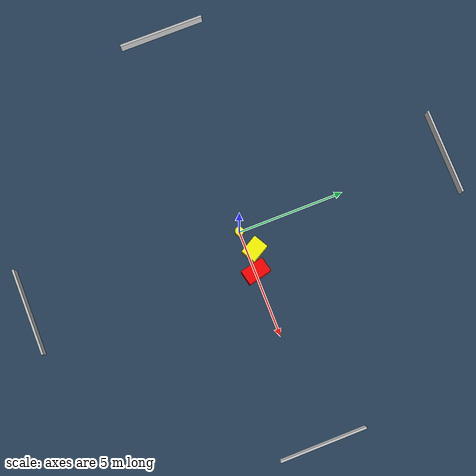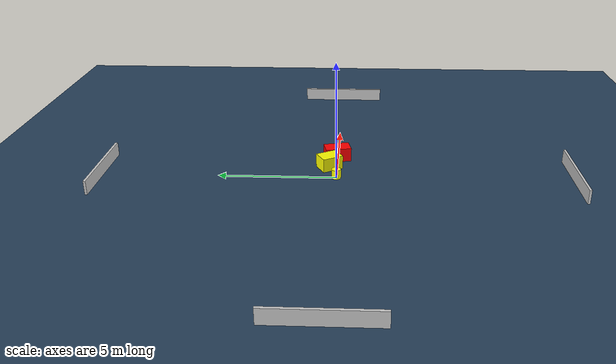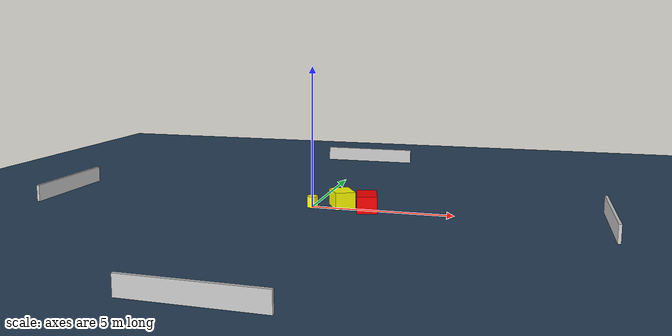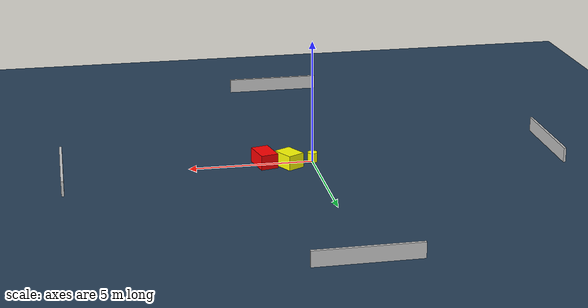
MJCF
<?xml version="1.0" ?>
<mujoco model="generated_environment">
  <option timestep="0.01" integrator="RK4" cone="elliptic"/>
  <default>
    <geom density="1"/>
  </default>
  <asset>
    <texture builtin="gradient" height="3072" name="skybox" rgb1="0.3 0.5 0.7" rgb2="0 0 0" type="skybox" width="512"/>
    <texture builtin="checker" height="300" name="groundplane" rgb1="0.2 0.3 0.4" rgb2="0.1 0.2 0.3" type="2d" width="300"/>
    <material name="groundplane" reflectance="0.2" texrepeat="5 5" texture="groundplane"/>
  </asset>
  <worldbody>
    <light dir="0 0 -1" directional="true" pos="0 0 1.5"/>
    <geom condim="3" friction="0.5 0.005 0.001" material="groundplane" name="floor" pos="0 0 0" size="0 0 0.05" type="plane"/>
    <body name="walls">
      <geom name="wall_1" condim="4" pos="-10.0 0.0 0.3" rgba="0.800000011920929 0.800000011920929 0.800000011920929 1.0" size="0.05 2.0 0.3" type="box"/>
      <geom name="wall_2" condim="4" pos="10.0 0.0 0.3" rgba="0.800000011920929 0.800000011920929 0.800000011920929 1.0" size="0.05 2.0 0.3" type="box"/>
      <geom name="wall_3" condim="4" pos="0.0 -10.0 0.3" rgba="0.800000011920929 0.800000011920929 0.800000011920929 1.0" size="2.0 0.05 0.3" type="box"/>
      <geom name="wall_4" condim="4" pos="0.0 10.0 0.3" rgba="0.800000011920929 0.800000011920929 0.800000011920929 1.0" size="2.0 0.05 0.3" type="box"/>
    </body>
    <body name="robot">
      <joint name="joint_x" type="slide" pos="0 0 0" axis="1 0 0"/>
      <joint name="joint_y" type="slide" pos="0 0 0" axis="0 1 0"/>
      <geom name="robot" type="cylinder" pos="0.0 0.0 0.2" size="0.2 0.2 0.0" mass="5.0" friction="1.0 0.005 0.0001" condim="4" rgba="1.0 1.0 0.0 1.0"/>
    </body>
    <body name="obstacle_1_movable">
      <geom name="obstacle_1_movable" condim="4" pos="1.0120606493501132 0.32883241720914247 0.3" euler="0 0 119.27701997958533" friction="0.0 0.005 0.001" rgba="1.0 1.0 0.0 1.0" size="0.4638624073711076 0.36392817469980887 0.3" type="box" mass="0.1"/>
      <joint type="free"/>
    </body>
    <body name="obstacle_2_static">
      <geom name="obstacle_2_static" condim="4" pos="1.9639321530036822 0.02438740797129598 0.3" euler="0 0 12.953064855313126" friction="0.0 0.005 0.001" rgba="1.0 0.0 0.0 1.0" size="0.35305028786417236 0.5628859895099352 0.3" type="box"/>
    </body>
  </worldbody>
  <actuator>
    <motor name="actuator_x" joint="joint_x" gear="1" ctrlrange="-1 1"/>
    <motor name="actuator_y" joint="joint_y" gear="1" ctrlrange="-1 1"/>
  </actuator>
</mujoco>
